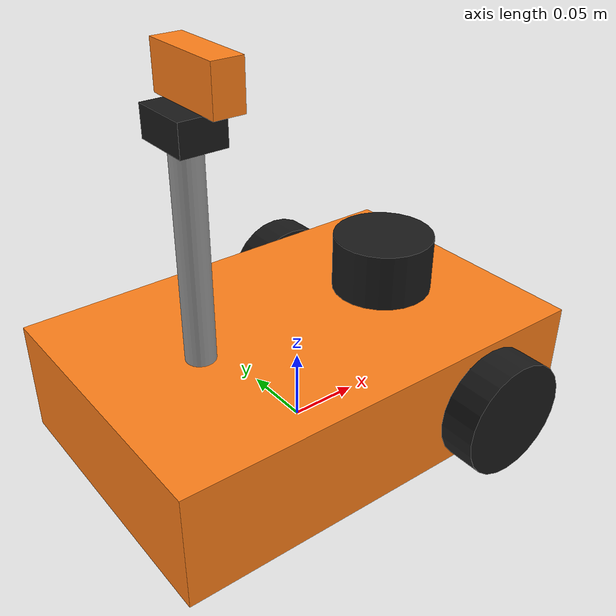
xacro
<?xml version="1.0"?>
<robot xmlns:xacro="http://www.ros.org/wiki/xacro" name="diff_bot">

  <!-- ===== Параметры ===== -->
  <xacro:property name="base_l" value="0.30"/>
  <xacro:property name="base_w" value="0.20"/>
  <xacro:property name="base_h" value="0.08"/>
  <xacro:property name="base_mass" value="1.5"/>
  <xacro:property name="wheel_r" value="0.04"/>
  <xacro:property name="wheel_w" value="0.025"/>
  <xacro:property name="wheel_mass" value="0.1"/>
  <xacro:property name="wheel_y" value="${base_w/2 + wheel_w/2 + 0.005}"/>
  <xacro:property name="mast_h" value="0.15"/>

  <!-- ===== Материалы ===== -->
  <material name="orange"><color rgba="1.0 0.5 0.1 1"/></material>
  <material name="black"><color rgba="0.1 0.1 0.1 1"/></material>
  <material name="grey"><color rgba="0.6 0.6 0.6 1"/></material>

  <!-- ===== Макросы инерции (без них Gazebo «взорвёт» робота) ===== -->
  <xacro:macro name="box_inertia" params="m x y z">
    <inertial>
      <mass value="${m}"/>
      <inertia ixx="${m*(y*y+z*z)/12}" ixy="0" ixz="0" iyy="${m*(x*x+z*z)/12}" iyz="0" izz="${m*(x*x+y*y)/12}"/>
    </inertial>
  </xacro:macro>

  <xacro:macro name="cylinder_inertia" params="m r h">
    <inertial>
      <mass value="${m}"/>
      <inertia ixx="${m*(3*r*r+h*h)/12}" ixy="0" ixz="0" iyy="${m*(3*r*r+h*h)/12}" iyz="0" izz="${m*r*r/2}"/>
    </inertial>
  </xacro:macro>

  <xacro:macro name="sphere_inertia" params="m r">
    <inertial>
      <mass value="${m}"/>
      <inertia ixx="${2*m*r*r/5}" ixy="0" ixz="0" iyy="${2*m*r*r/5}" iyz="0" izz="${2*m*r*r/5}"/>
    </inertial>
  </xacro:macro>

  <!-- ===== База ===== -->
  <link name="base_footprint"/>

  <link name="base_link">
    <visual>
      <geometry><box size="${base_l} ${base_w} ${base_h}"/></geometry>
      <material name="orange"/>
    </visual>
    <collision>
      <geometry><box size="${base_l} ${base_w} ${base_h}"/></geometry>
    </collision>
    <xacro:box_inertia m="${base_mass}" x="${base_l}" y="${base_w}" z="${base_h}"/>
  </link>

  <joint name="base_footprint_joint" type="fixed">
    <parent link="base_footprint"/>
    <child link="base_link"/>
    <origin xyz="0 0 ${wheel_r}"/>
  </joint>

  <!-- ===== Колёса (макрос, вызываем дважды) ===== -->
  <xacro:macro name="wheel" params="side y_sign">
    <link name="${side}_wheel">
      <visual>
        <origin rpy="${pi/2} 0 0"/>
        <geometry><cylinder radius="${wheel_r}" length="${wheel_w}"/></geometry>
        <material name="black"/>
      </visual>
      <collision>
        <origin rpy="${pi/2} 0 0"/>
        <geometry><cylinder radius="${wheel_r}" length="${wheel_w}"/></geometry>
      </collision>
      <xacro:cylinder_inertia m="${wheel_mass}" r="${wheel_r}" h="${wheel_w}"/>
    </link>
    <joint name="${side}_wheel_joint" type="continuous">
      <parent link="base_link"/>
      <child link="${side}_wheel"/>
      <origin xyz="${base_l/4} ${y_sign*wheel_y} 0"/>
      <axis xyz="0 1 0"/>
    </joint>
  </xacro:macro>

  <xacro:wheel side="left" y_sign="1"/>
  <xacro:wheel side="right" y_sign="-1"/>

  <!-- ===== Шаровая опора ===== -->
  <link name="caster">
    <visual><geometry><sphere radius="${wheel_r/2}"/></geometry><material name="grey"/></visual>
    <collision><geometry><sphere radius="${wheel_r/2}"/></geometry></collision>
    <xacro:sphere_inertia m="0.05" r="${wheel_r/2}"/>
  </link>
  <joint name="caster_joint" type="fixed">
    <parent link="base_link"/>
    <child link="caster"/>
    <origin xyz="${-base_l/2 + 0.03} 0 ${-wheel_r/2}"/>
  </joint>

  <!-- ===== Лидар ===== -->
  <link name="laser_frame">
    <visual><geometry><cylinder radius="0.035" length="0.04"/></geometry><material name="black"/></visual>
    <collision><geometry><cylinder radius="0.035" length="0.04"/></geometry></collision>
    <xacro:cylinder_inertia m="0.1" r="0.035" h="0.04"/>
  </link>
  <joint name="laser_joint" type="fixed">
    <parent link="base_link"/>
    <child link="laser_frame"/>
    <origin xyz="${base_l/4} 0 ${base_h/2 + 0.02}"/>
  </joint>

  <!-- ===== Мачта + pan-tilt голова с камерой ===== -->
  <link name="mast">
    <visual>
      <origin xyz="0 0 ${mast_h/2}"/>
      <geometry><cylinder radius="0.01" length="${mast_h}"/></geometry>
      <material name="grey"/>
    </visual>
    <collision>
      <origin xyz="0 0 ${mast_h/2}"/>
      <geometry><cylinder radius="0.01" length="${mast_h}"/></geometry>
    </collision>
    <xacro:cylinder_inertia m="0.05" r="0.01" h="${mast_h}"/>
  </link>
  <joint name="mast_joint" type="fixed">
    <parent link="base_link"/>
    <child link="mast"/>
    <origin xyz="${-base_l/4} 0 ${base_h/2}"/>
  </joint>

  <link name="pan_link">
    <visual><geometry><box size="0.03 0.04 0.02"/></geometry><material name="black"/></visual>
    <collision><geometry><box size="0.03 0.04 0.02"/></geometry></collision>
    <xacro:box_inertia m="0.03" x="0.03" y="0.04" z="0.02"/>
  </link>
  <joint name="pan_joint" type="revolute">
    <parent link="mast"/>
    <child link="pan_link"/>
    <origin xyz="0 0 ${mast_h}"/>
    <axis xyz="0 0 1"/>
    <limit lower="${-pi/2}" upper="${pi/2}" effort="1.0" velocity="2.0"/>
  </joint>

  <link name="camera_link">
    <visual><geometry><box size="0.02 0.06 0.03"/></geometry><material name="orange"/></visual>
    <collision><geometry><box size="0.02 0.06 0.03"/></geometry></collision>
    <xacro:box_inertia m="0.03" x="0.02" y="0.06" z="0.03"/>
  </link>
  <joint name="tilt_joint" type="revolute">
    <parent link="pan_link"/>
    <child link="camera_link"/>
    <origin xyz="0.01 0 0.025"/>
    <axis xyz="0 1 0"/>
    <limit lower="${-pi/4}" upper="${pi/3}" effort="1.0" velocity="2.0"/>
  </joint>

</robot>
